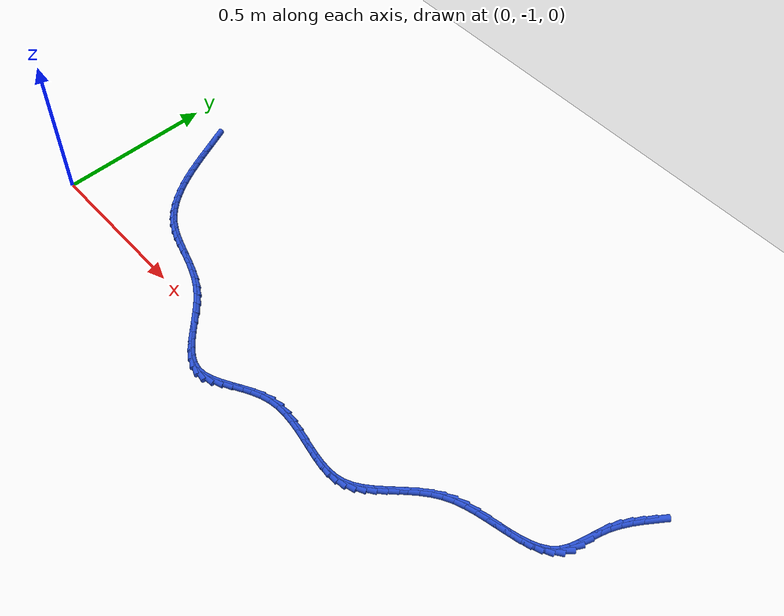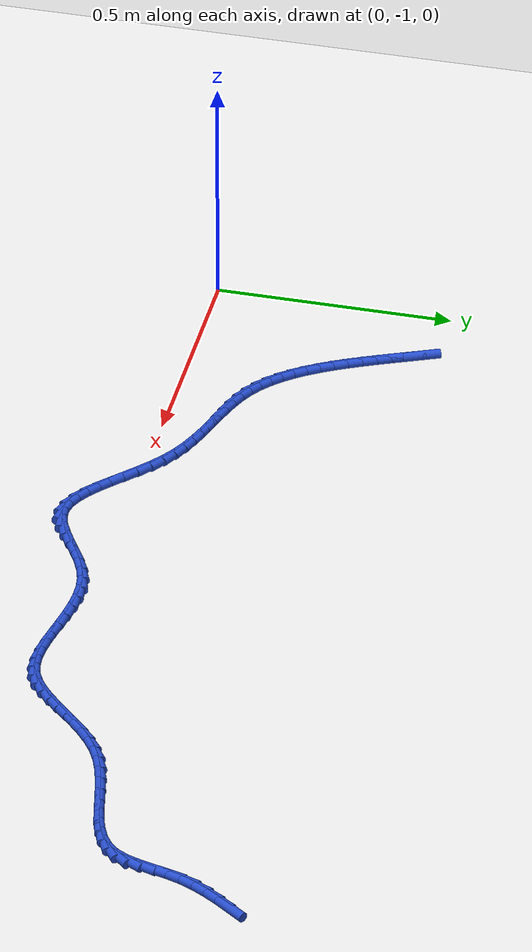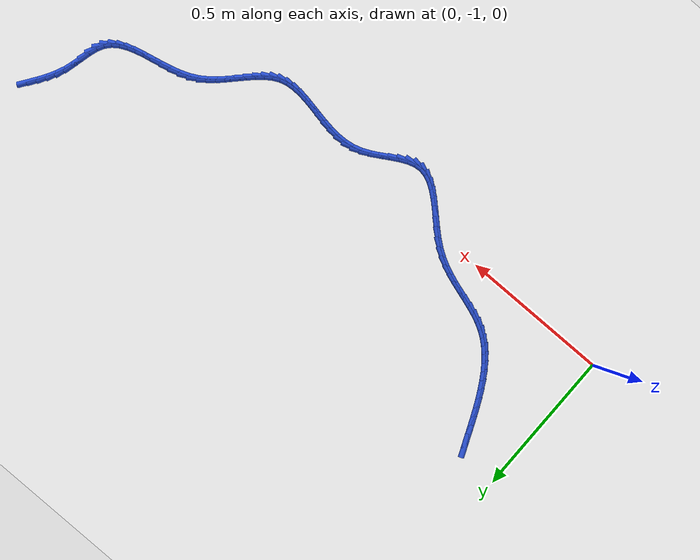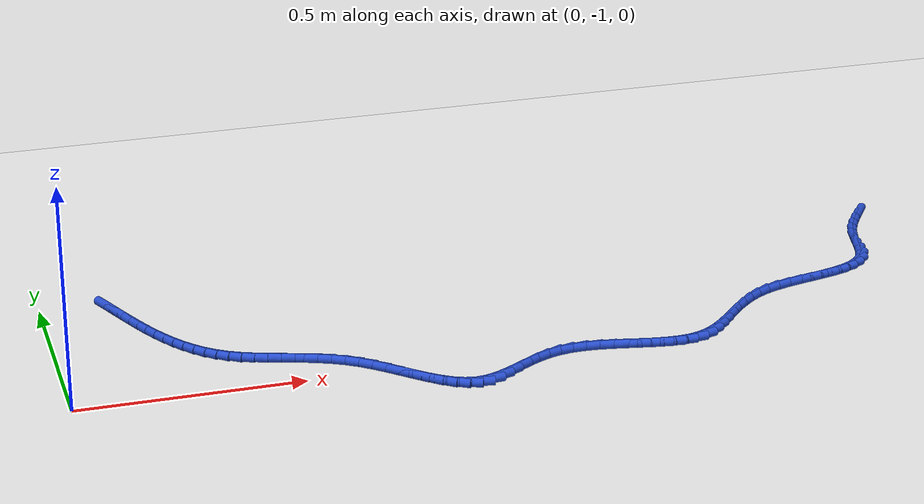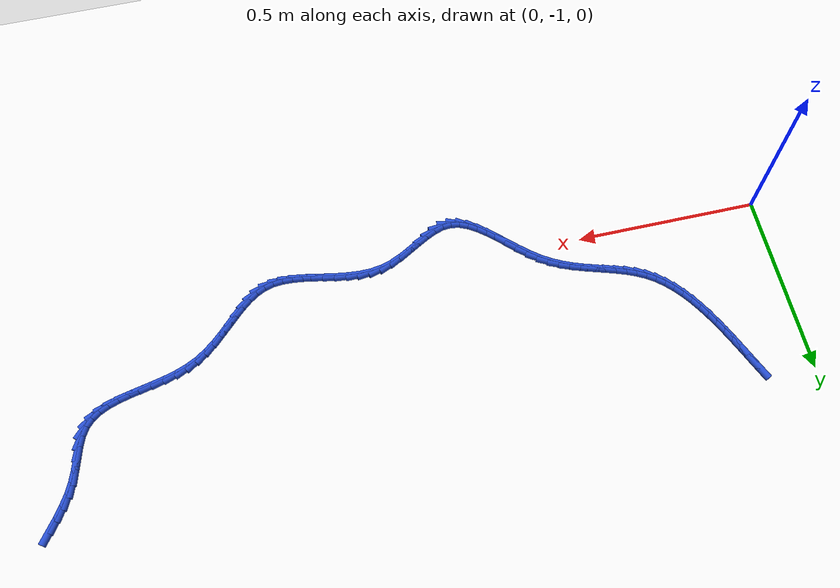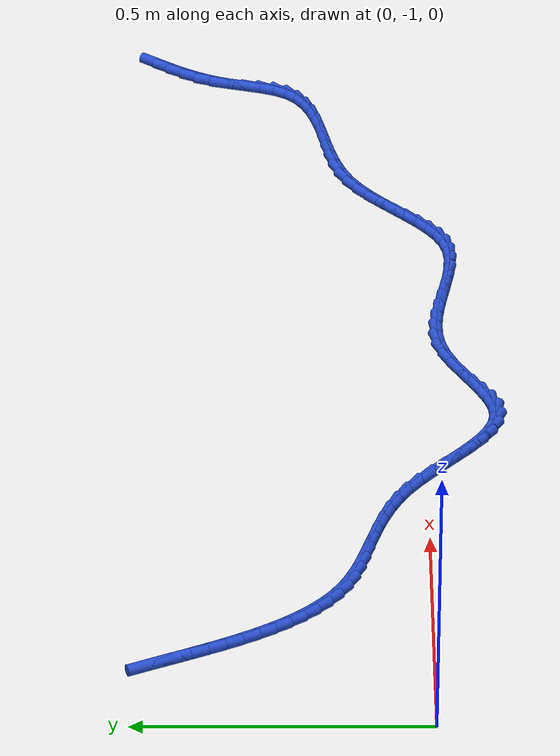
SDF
<sdf version="1.6">
 <world name="default">
  <model name="ground_plane">
   <static>1</static>
   <link name="link">
    <collision name="collision">
     <geometry><plane><normal>0 0 1</normal><size>100 100</size></plane></geometry>
     <surface><friction><ode><mu>100</mu><mu2>50</mu2></ode></friction></surface>
    </collision>
    <visual name="visual">
     <cast_shadows>0</cast_shadows>
     <geometry><plane><normal>0 0 1</normal><size>100 100</size></plane></geometry>
     <material>
      <script><uri>file://media/materials/scripts/gazebo.material</uri><name>Gazebo/WhiteGlow</name></script>
     </material>
    </visual>
   </link>
  </model>
  <model name="line">
   <link name="link_141">
    <pose>1.9803087918837716 -0.5093357643512426 0.01 0 1.57 0.9616174661129991</pose>
    <collision name="collision">
     <geometry><cylinder><radius>0.01</radius><length>0.08</length></cylinder></geometry>
    </collision>
    <visual name="visual">
     <material>
      <script><name>Gazebo/Blue</name><uri>file://media/materials/scripts/gazebo.material</uri></script>
     </material>
     <geometry><cylinder><radius>0.01</radius><length>0.08</length></cylinder></geometry>
    </visual>
   </link>
   <link name="link_142">
    <pose>1.9623600269760786 -0.5350614833952047 0.01 0 1.57 1.0075469430716104</pose>
    <collision name="collision">
     <geometry><cylinder><radius>0.01</radius><length>0.08</length></cylinder></geometry>
    </collision>
    <visual name="visual">
     <material>
      <script><name>Gazebo/Blue</name><uri>file://media/materials/scripts/gazebo.material</uri></script>
     </material>
     <geometry><cylinder><radius>0.01</radius><length>0.08</length></cylinder></geometry>
    </visual>
   </link>
   <link name="link_143">
    <pose>1.9456217870574417 -0.5615676227456619 0.01 0 1.57 1.0735924194856676</pose>
    <collision name="collision">
     <geometry><cylinder><radius>0.01</radius><length>0.08</length></cylinder></geometry>
    </collision>
    <visual name="visual">
     <material>
      <script><name>Gazebo/Blue</name><uri>file://media/materials/scripts/gazebo.material</uri></script>
     </material>
     <geometry><cylinder><radius>0.01</radius><length>0.08</length></cylinder></geometry>
    </visual>
   </link>
   <link name="link_144">
    <pose>1.9307254029369152 -0.5890174170248762 0.01 0 1.57 1.1604555459437205</pose>
    <collision name="collision">
     <geometry><cylinder><radius>0.01</radius><length>0.08</length></cylinder></geometry>
    </collision>
    <visual name="visual">
     <material>
      <script><name>Gazebo/Blue</name><uri>file://media/materials/scripts/gazebo.material</uri></script>
     </material>
     <geometry><cylinder><radius>0.01</radius><length>0.08</length></cylinder></geometry>
    </visual>
   </link>
   <link name="link_145">
    <pose>1.9183022054235566 -0.6175741008551107 0.01 0 1.57 1.2619222688862324</pose>
    <collision name="collision">
     <geometry><cylinder><radius>0.01</radius><length>0.08</length></cylinder></geometry>
    </collision>
    <visual name="visual">
     <material>
      <script><name>Gazebo/Blue</name><uri>file://media/materials/scripts/gazebo.material</uri></script>
     </material>
     <geometry><cylinder><radius>0.01</radius><length>0.08</length></cylinder></geometry>
    </visual>
   </link>
   <link name="link_146">
    <pose>1.9088176614021874 -0.6472981559028743 0.01 0 1.57 1.324828326039104</pose>
    <collision name="collision">
     <geometry><cylinder><radius>0.01</radius><length>0.08</length></cylinder></geometry>
    </collision>
    <visual name="visual">
     <material>
      <script><name>Gazebo/Blue</name><uri>file://media/materials/scripts/gazebo.material</uri></script>
     </material>
     <geometry><cylinder><radius>0.01</radius><length>0.08</length></cylinder></geometry>
    </visual>
   </link>
   <link name="link_147">
    <pose>1.901274617219261 -0.6773439681652539 0.01 0 1.57 1.3226670640236446</pose>
    <collision name="collision">
     <geometry><cylinder><radius>0.01</radius><length>0.08</length></cylinder></geometry>
    </collision>
    <visual name="visual">
     <material>
      <script><name>Gazebo/Blue</name><uri>file://media/materials/scripts/gazebo.material</uri></script>
     </material>
     <geometry><cylinder><radius>0.01</radius><length>0.08</length></cylinder></geometry>
    </visual>
   </link>
   <link name="link_148">
    <pose>1.8939146991314708 -0.7063943466248471 0.01 0 1.57 1.2480203772547067</pose>
    <collision name="collision">
     <geometry><cylinder><radius>0.01</radius><length>0.08</length></cylinder></geometry>
    </collision>
    <visual name="visual">
     <material>
      <script><name>Gazebo/Blue</name><uri>file://media/materials/scripts/gazebo.material</uri></script>
     </material>
     <geometry><cylinder><radius>0.01</radius><length>0.08</length></cylinder></geometry>
    </visual>
   </link>
   <link name="link_149">
    <pose>1.8849729957350259 -0.7331280501735445 0.01 0 1.57 1.0818809203704731</pose>
    <collision name="collision">
     <geometry><cylinder><radius>0.01</radius><length>0.08</length></cylinder></geometry>
    </collision>
    <visual name="visual">
     <material>
      <script><name>Gazebo/Blue</name><uri>file://media/materials/scripts/gazebo.material</uri></script>
     </material>
     <geometry><cylinder><radius>0.01</radius><length>0.08</length></cylinder></geometry>
    </visual>
   </link>
   <link name="link_150">
    <pose>1.872685650878479 -0.7562247459262164 0.01 0 1.57 0.837390259455404</pose>
    <collision name="collision">
     <geometry><cylinder><radius>0.01</radius><length>0.08</length></cylinder></geometry>
    </collision>
    <visual name="visual">
     <material>
      <script><name>Gazebo/Blue</name><uri>file://media/materials/scripts/gazebo.material</uri></script>
     </material>
     <geometry><cylinder><radius>0.01</radius><length>0.08</length></cylinder></geometry>
    </visual>
   </link>
   <link name="link_151">
    <pose>1.8558813153719185 -0.7748740533716243 0.01 0 1.57 0.6142586294428259</pose>
    <collision name="collision">
     <geometry><cylinder><radius>0.01</radius><length>0.08</length></cylinder></geometry>
    </collision>
    <visual name="visual">
     <material>
      <script><name>Gazebo/Blue</name><uri>file://media/materials/scripts/gazebo.material</uri></script>
     </material>
     <geometry><cylinder><radius>0.01</radius><length>0.08</length></cylinder></geometry>
    </visual>
   </link>
   <link name="link_152">
    <pose>1.8349672529270007 -0.7896242551854119 0.01 0 1.57 0.4452506866545466</pose>
    <collision name="collision">
     <geometry><cylinder><radius>0.01</radius><length>0.08</length></cylinder></geometry>
    </collision>
    <visual name="visual">
     <material>
      <script><name>Gazebo/Blue</name><uri>file://media/materials/scripts/gazebo.material</uri></script>
     </material>
     <geometry><cylinder><radius>0.01</radius><length>0.08</length></cylinder></geometry>
    </visual>
   </link>
   <link name="link_153">
    <pose>1.810610762202967 -0.8012474380614465 0.01 0 1.57 0.3291749541562293</pose>
    <collision name="collision">
     <geometry><cylinder><radius>0.01</radius><length>0.08</length></cylinder></geometry>
    </collision>
    <visual name="visual">
     <material>
      <script><name>Gazebo/Blue</name><uri>file://media/materials/scripts/gazebo.material</uri></script>
     </material>
     <geometry><cylinder><radius>0.01</radius><length>0.08</length></cylinder></geometry>
    </visual>
   </link>
   <link name="link_154">
    <pose>1.783479141859061 -0.8105156886935954 0.01 0 1.57 0.25702983141219127</pose>
    <collision name="collision">
     <geometry><cylinder><radius>0.01</radius><length>0.08</length></cylinder></geometry>
    </collision>
    <visual name="visual">
     <material>
      <script><name>Gazebo/Blue</name><uri>file://media/materials/scripts/gazebo.material</uri></script>
     </material>
     <geometry><cylinder><radius>0.01</radius><length>0.08</length></cylinder></geometry>
    </visual>
   </link>
   <link name="link_155">
    <pose>1.7542396905545246 -0.8182010937757264 0.01 0 1.57 0.2204347367454198</pose>
    <collision name="collision">
     <geometry><cylinder><radius>0.01</radius><length>0.08</length></cylinder></geometry>
    </collision>
    <visual name="visual">
     <material>
      <script><name>Gazebo/Blue</name><uri>file://media/materials/scripts/gazebo.material</uri></script>
     </material>
     <geometry><cylinder><radius>0.01</radius><length>0.08</length></cylinder></geometry>
    </visual>
   </link>
   <link name="link_156">
    <pose>1.7235597069486033 -0.8250757400017068 0.01 0 1.57 0.21400962419500233</pose>
    <collision name="collision">
     <geometry><cylinder><radius>0.01</radius><length>0.08</length></cylinder></geometry>
    </collision>
    <visual name="visual">
     <material>
      <script><name>Gazebo/Blue</name><uri>file://media/materials/scripts/gazebo.material</uri></script>
     </material>
     <geometry><cylinder><radius>0.01</radius><length>0.08</length></cylinder></geometry>
    </visual>
   </link>
   <link name="link_157">
    <pose>1.692106489700538 -0.8319117140654037 0.01 0 1.57 0.23540092606670313</pose>
    <collision name="collision">
     <geometry><cylinder><radius>0.01</radius><length>0.08</length></cylinder></geometry>
    </collision>
    <visual name="visual">
     <material>
      <script><name>Gazebo/Blue</name><uri>file://media/materials/scripts/gazebo.material</uri></script>
     </material>
     <geometry><cylinder><radius>0.01</radius><length>0.08</length></cylinder></geometry>
    </visual>
   </link>
   <link name="link_158">
    <pose>1.6605473374695718 -0.8394811026606845 0.01 0 1.57 0.2848007526488967</pose>
    <collision name="collision">
     <geometry><cylinder><radius>0.01</radius><length>0.08</length></cylinder></geometry>
    </collision>
    <visual name="visual">
     <material>
      <script><name>Gazebo/Blue</name><uri>file://media/materials/scripts/gazebo.material</uri></script>
     </material>
     <geometry><cylinder><radius>0.01</radius><length>0.08</length></cylinder></geometry>
    </visual>
   </link>
   <link name="link_159">
    <pose>1.6295495489149492 -0.8485559924814177 0.01 0 1.57 0.36432676754444265</pose>
    <collision name="collision">
     <geometry><cylinder><radius>0.01</radius><length>0.08</length></cylinder></geometry>
    </collision>
    <visual name="visual">
     <material>
      <script><name>Gazebo/Blue</name><uri>file://media/materials/scripts/gazebo.material</uri></script>
     </material>
     <geometry><cylinder><radius>0.01</radius><length>0.08</length></cylinder></geometry>
    </visual>
   </link>
   <link name="link_160">
    <pose>1.5997804226959111 -0.8599084702214695 0.01 0 1.57 0.47658942197182647</pose>
    <collision name="collision">
     <geometry><cylinder><radius>0.01</radius><length>0.08</length></cylinder></geometry>
    </collision>
    <visual name="visual">
     <material>
      <script><name>Gazebo/Blue</name><uri>file://media/materials/scripts/gazebo.material</uri></script>
     </material>
     <geometry><cylinder><radius>0.01</radius><length>0.08</length></cylinder></geometry>
    </visual>
   </link>
   <link name="link_161">
    <pose>1.5719015489816948 -0.8743018739629826 0.01 0 1.57 0.6000782211275286</pose>
    <collision name="collision">
     <geometry><cylinder><radius>0.01</radius><length>0.08</length></cylinder></geometry>
    </collision>
    <visual name="visual">
     <material>
      <script><name>Gazebo/Blue</name><uri>file://media/materials/scripts/gazebo.material</uri></script>
     </material>
     <geometry><cylinder><radius>0.01</radius><length>0.08</length></cylinder></geometry>
    </visual>
   </link>
   <link name="link_162">
    <pose>1.5461831429823234 -0.8918997356128829 0.01 0 1.57 0.6960551902035438</pose>
    <collision name="collision">
     <geometry><cylinder><radius>0.01</radius><length>0.08</length></cylinder></geometry>
    </collision>
    <visual name="visual">
     <material>
      <script><name>Gazebo/Blue</name><uri>file://media/materials/scripts/gazebo.material</uri></script>
     </material>
     <geometry><cylinder><radius>0.01</radius><length>0.08</length></cylinder></geometry>
    </visual>
   </link>
   <link name="link_163">
    <pose>1.5222588863596431 -0.9118900603001465 0.01 0 1.57 0.7610241458978654</pose>
    <collision name="collision">
     <geometry><cylinder><radius>0.01</radius><length>0.08</length></cylinder></geometry>
    </collision>
    <visual name="visual">
     <material>
      <script><name>Gazebo/Blue</name><uri>file://media/materials/scripts/gazebo.material</uri></script>
     </material>
     <geometry><cylinder><radius>0.01</radius><length>0.08</length></cylinder></geometry>
    </visual>
   </link>
   <link name="link_164">
    <pose>1.4997040547383311 -0.9333713423127067 0.01 0 1.57 0.7959424958872895</pose>
    <collision name="collision">
     <geometry><cylinder><radius>0.01</radius><length>0.08</length></cylinder></geometry>
    </collision>
    <visual name="visual">
     <material>
      <script><name>Gazebo/Blue</name><uri>file://media/materials/scripts/gazebo.material</uri></script>
     </material>
     <geometry><cylinder><radius>0.01</radius><length>0.08</length></cylinder></geometry>
    </visual>
   </link>
   <link name="link_165">
    <pose>1.4780939237430641 -0.9554420759384944 0.01 0 1.57 0.800998833929001</pose>
    <collision name="collision">
     <geometry><cylinder><radius>0.01</radius><length>0.08</length></cylinder></geometry>
    </collision>
    <visual name="visual">
     <material>
      <script><name>Gazebo/Blue</name><uri>file://media/materials/scripts/gazebo.material</uri></script>
     </material>
     <geometry><cylinder><radius>0.01</radius><length>0.08</length></cylinder></geometry>
    </visual>
   </link>
   <link name="link_166">
    <pose>1.4570037689985196 -0.977200755465442 0.01 0 1.57 0.7745708804798379</pose>
    <collision name="collision">
     <geometry><cylinder><radius>0.01</radius><length>0.08</length></cylinder></geometry>
    </collision>
    <visual name="visual">
     <material>
      <script><name>Gazebo/Blue</name><uri>file://media/materials/scripts/gazebo.material</uri></script>
     </material>
     <geometry><cylinder><radius>0.01</radius><length>0.08</length></cylinder></geometry>
    </visual>
   </link>
   <link name="link_167">
    <pose>1.4360088661293744 -0.9977458751814815 0.01 0 1.57 0.7127213934936995</pose>
    <collision name="collision">
     <geometry><cylinder><radius>0.01</radius><length>0.08</length></cylinder></geometry>
    </collision>
    <visual name="visual">
     <material>
      <script><name>Gazebo/Blue</name><uri>file://media/materials/scripts/gazebo.material</uri></script>
     </material>
     <geometry><cylinder><radius>0.01</radius><length>0.08</length></cylinder></geometry>
    </visual>
   </link>
   <link name="link_168">
    <pose>1.4146844907603071 -1.016175929374545 0.01 0 1.57 0.6094628033240533</pose>
    <collision name="collision">
     <geometry><cylinder><radius>0.01</radius><length>0.08</length></cylinder></geometry>
    </collision>
    <visual name="visual">
     <material>
      <script><name>Gazebo/Blue</name><uri>file://media/materials/scripts/gazebo.material</uri></script>
     </material>
     <geometry><cylinder><radius>0.01</radius><length>0.08</length></cylinder></geometry>
    </visual>
   </link>
   <link name="link_169">
    <pose>1.3926059185159936 -1.031589412332564 0.01 0 1.57 0.45905050871153846</pose>
    <collision name="collision">
     <geometry><cylinder><radius>0.01</radius><length>0.08</length></cylinder></geometry>
    </collision>
    <visual name="visual">
     <material>
      <script><name>Gazebo/Blue</name><uri>file://media/materials/scripts/gazebo.material</uri></script>
     </material>
     <geometry><cylinder><radius>0.01</radius><length>0.08</length></cylinder></geometry>
    </visual>
   </link>
   <link name="link_170">
    <pose>1.369348425021111 -1.0430848183434707 0.01 0 1.57 0.2680133254273836</pose>
    <collision name="collision">
     <geometry><cylinder><radius>0.01</radius><length>0.08</length></cylinder></geometry>
    </collision>
    <visual name="visual">
     <material>
      <script><name>Gazebo/Blue</name><uri>file://media/materials/scripts/gazebo.material</uri></script>
     </material>
     <geometry><cylinder><radius>0.01</radius><length>0.08</length></cylinder></geometry>
    </visual>
   </link>
   <link name="link_171">
    <pose>1.344536799510122 -1.0498985984631444 0.01 0 1.57 0.0942628286378651</pose>
    <collision name="collision">
     <geometry><cylinder><radius>0.01</radius><length>0.08</length></cylinder></geometry>
    </collision>
    <visual name="visual">
     <material>
      <script><name>Gazebo/Blue</name><uri>file://media/materials/scripts/gazebo.material</uri></script>
     </material>
     <geometry><cylinder><radius>0.01</radius><length>0.08</length></cylinder></geometry>
    </visual>
   </link>
   <link name="link_172">
    <pose>1.3181983491196567 -1.0523887149656335 0.01 0 1.57 -0.03363402758428632</pose>
    <collision name="collision">
     <geometry><cylinder><radius>0.01</radius><length>0.08</length></cylinder></geometry>
    </collision>
    <visual name="visual">
     <material>
      <script><name>Gazebo/Blue</name><uri>file://media/materials/scripts/gazebo.material</uri></script>
     </material>
     <geometry><cylinder><radius>0.01</radius><length>0.08</length></cylinder></geometry>
    </visual>
   </link>
   <link name="link_173">
    <pose>1.290556170447707 -1.0514586464265725 0.01 0 1.57 -0.11931075538445785</pose>
    <collision name="collision">
     <geometry><cylinder><radius>0.01</radius><length>0.08</length></cylinder></geometry>
    </collision>
    <visual name="visual">
     <material>
      <script><name>Gazebo/Blue</name><uri>file://media/materials/scripts/gazebo.material</uri></script>
     </material>
     <geometry><cylinder><radius>0.01</radius><length>0.08</length></cylinder></geometry>
    </visual>
   </link>
   <link name="link_174">
    <pose>1.2618346655362451 -1.0480155087009866 0.01 0 1.57 -0.16908338078601834</pose>
    <collision name="collision">
     <geometry><cylinder><radius>0.01</radius><length>0.08</length></cylinder></geometry>
    </collision>
    <visual name="visual">
     <material>
      <script><name>Gazebo/Blue</name><uri>file://media/materials/scripts/gazebo.material</uri></script>
     </material>
     <geometry><cylinder><radius>0.01</radius><length>0.08</length></cylinder></geometry>
    </visual>
   </link>
   <link name="link_175">
    <pose>1.2322582364272436 -1.0429664176438997 0.01 0 1.57 -0.18803696415677998</pose>
    <collision name="collision">
     <geometry><cylinder><radius>0.01</radius><length>0.08</length></cylinder></geometry>
    </collision>
    <visual name="visual">
     <material>
      <script><name>Gazebo/Blue</name><uri>file://media/materials/scripts/gazebo.material</uri></script>
     </material>
     <geometry><cylinder><radius>0.01</radius><length>0.08</length></cylinder></geometry>
    </visual>
   </link>
   <link name="link_176">
    <pose>1.2020512851626752 -1.037218489110336 0.01 0 1.57 -0.17901976851910803</pose>
    <collision name="collision">
     <geometry><cylinder><radius>0.01</radius><length>0.08</length></cylinder></geometry>
    </collision>
    <visual name="visual">
     <material>
      <script><name>Gazebo/Blue</name><uri>file://media/materials/scripts/gazebo.material</uri></script>
     </material>
     <geometry><cylinder><radius>0.01</radius><length>0.08</length></cylinder></geometry>
    </visual>
   </link>
   <link name="link_177">
    <pose>1.1714382137845107 -1.0316788389553195 0.01 0 1.57 -0.1426925622535508</pose>
    <collision name="collision">
     <geometry><cylinder><radius>0.01</radius><length>0.08</length></cylinder></geometry>
    </collision>
    <visual name="visual">
     <material>
      <script><name>Gazebo/Blue</name><uri>file://media/materials/scripts/gazebo.material</uri></script>
     </material>
     <geometry><cylinder><radius>0.01</radius><length>0.08</length></cylinder></geometry>
    </visual>
   </link>
   <link name="link_178">
    <pose>1.140643424334725 -1.0272545830338753 0.01 0 1.57 -0.077941992134923</pose>
    <collision name="collision">
     <geometry><cylinder><radius>0.01</radius><length>0.08</length></cylinder></geometry>
    </collision>
    <visual name="visual">
     <material>
      <script><name>Gazebo/Blue</name><uri>file://media/materials/scripts/gazebo.material</uri></script>
     </material>
     <geometry><cylinder><radius>0.01</radius><length>0.08</length></cylinder></geometry>
    </visual>
   </link>
   <link name="link_179">
    <pose>1.1098913188552897 -1.0248528372010273 0.01 0 1.57 0.017314319250920734</pose>
    <collision name="collision">
     <geometry><cylinder><radius>0.01</radius><length>0.08</length></cylinder></geometry>
    </collision>
    <visual name="visual">
     <material>
      <script><name>Gazebo/Blue</name><uri>file://media/materials/scripts/gazebo.material</uri></script>
     </material>
     <geometry><cylinder><radius>0.01</radius><length>0.08</length></cylinder></geometry>
    </visual>
   </link>
   <link name="link_180">
    <pose>1.0794062993881768 -1.0253807173118 0.01 0 1.57 0.14450447529705002</pose>
    <collision name="collision">
     <geometry><cylinder><radius>0.01</radius><length>0.08</length></cylinder></geometry>
    </collision>
    <visual name="visual">
     <material>
      <script><name>Gazebo/Blue</name><uri>file://media/materials/scripts/gazebo.material</uri></script>
     </material>
     <geometry><cylinder><radius>0.01</radius><length>0.08</length></cylinder></geometry>
    </visual>
   </link>
   <link name="link_181">
    <pose>1.049412767975359 -1.0297453392212172 0.01 0 1.57 0.29770691655304515</pose>
    <collision name="collision">
     <geometry><cylinder><radius>0.01</radius><length>0.08</length></cylinder></geometry>
    </collision>
    <visual name="visual">
     <material>
      <script><name>Gazebo/Blue</name><uri>file://media/materials/scripts/gazebo.material</uri></script>
     </material>
     <geometry><cylinder><radius>0.01</radius><length>0.08</length></cylinder></geometry>
    </visual>
   </link>
   <link name="link_182">
    <pose>1.0201234065485865 -1.038732062772616 0.01 0 1.57 0.42603855463510015</pose>
    <collision name="collision">
     <geometry><cylinder><radius>0.01</radius><length>0.08</length></cylinder></geometry>
    </collision>
    <visual name="visual">
     <material>
      <script><name>Gazebo/Blue</name><uri>file://media/materials/scripts/gazebo.material</uri></script>
     </material>
     <geometry><cylinder><radius>0.01</radius><length>0.08</length></cylinder></geometry>
    </visual>
   </link>
   <link name="link_183">
    <pose>0.9916109154937528 -1.0516720298532216 0.01 0 1.57 0.5029017534004454</pose>
    <collision name="collision">
     <geometry><cylinder><radius>0.01</radius><length>0.08</length></cylinder></geometry>
    </collision>
    <visual name="visual">
     <material>
      <script><name>Gazebo/Blue</name><uri>file://media/materials/scripts/gazebo.material</uri></script>
     </material>
     <geometry><cylinder><radius>0.01</radius><length>0.08</length></cylinder></geometry>
    </visual>
   </link>
   <link name="link_184">
    <pose>0.9638558786397932 -1.066939416556198 0.01 0 1.57 0.5333411153434713</pose>
    <collision name="collision">
     <geometry><cylinder><radius>0.01</radius><length>0.08</length></cylinder></geometry>
    </collision>
    <visual name="visual">
     <material>
      <script><name>Gazebo/Blue</name><uri>file://media/materials/scripts/gazebo.material</uri></script>
     </material>
     <geometry><cylinder><radius>0.01</radius><length>0.08</length></cylinder></geometry>
    </visual>
   </link>
   <link name="link_185">
    <pose>0.9368372613281878 -1.0828915850903966 0.01 0 1.57 0.5181107118379943</pose>
    <collision name="collision">
     <geometry><cylinder><radius>0.01</radius><length>0.08</length></cylinder></geometry>
    </collision>
    <visual name="visual">
     <material>
      <script><name>Gazebo/Blue</name><uri>file://media/materials/scripts/gazebo.material</uri></script>
     </material>
     <geometry><cylinder><radius>0.01</radius><length>0.08</length></cylinder></geometry>
    </visual>
   </link>
   <link name="link_186">
    <pose>0.9105340289004193 -1.0978858976646662 0.01 0 1.57 0.45073802725872214</pose>
    <collision name="collision">
     <geometry><cylinder><radius>0.01</radius><length>0.08</length></cylinder></geometry>
    </collision>
    <visual name="visual">
     <material>
      <script><name>Gazebo/Blue</name><uri>file://media/materials/scripts/gazebo.material</uri></script>
     </material>
     <geometry><cylinder><radius>0.01</radius><length>0.08</length></cylinder></geometry>
    </visual>
   </link>
   <link name="link_187">
    <pose>0.8849251466979678 -1.1102797164878584 0.01 0 1.57 0.31592226912365007</pose>
    <collision name="collision">
     <geometry><cylinder><radius>0.01</radius><length>0.08</length></cylinder></geometry>
    </collision>
    <visual name="visual">
     <material>
      <script><name>Gazebo/Blue</name><uri>file://media/materials/scripts/gazebo.material</uri></script>
     </material>
     <geometry><cylinder><radius>0.01</radius><length>0.08</length></cylinder></geometry>
    </visual>
   </link>
   <link name="link_188">
    <pose>0.8599895800623146 -1.1184304037688242 0.01 0 1.57 0.09328224552289062</pose>
    <collision name="collision">
     <geometry><cylinder><radius>0.01</radius><length>0.08</length></cylinder></geometry>
    </collision>
    <visual name="visual">
     <material>
      <script><name>Gazebo/Blue</name><uri>file://media/materials/scripts/gazebo.material</uri></script>
     </material>
     <geometry><cylinder><radius>0.01</radius><length>0.08</length></cylinder></geometry>
    </visual>
   </link>
   <link name="link_189">
    <pose>0.8357058922182701 -1.1207022340284967 0.01 0 1.57 -0.18301170579196788</pose>
    <collision name="collision">
     <geometry><cylinder><radius>0.01</radius><length>0.08</length></cylinder></geometry>
    </collision>
    <visual name="visual">
     <material>
      <script><name>Gazebo/Blue</name><uri>file://media/materials/scripts/gazebo.material</uri></script>
     </material>
     <geometry><cylinder><radius>0.01</radius><length>0.08</length></cylinder></geometry>
    </visual>
   </link>
   <link name="link_190">
    <pose>0.8120028650283561 -1.1163152143100261 0.01 0 1.57 -0.411099257064355</pose>
    <collision name="collision">
     <geometry><cylinder><radius>0.01</radius><length>0.08</length></cylinder></geometry>
    </collision>
    <visual name="visual">
     <material>
      <script><name>Gazebo/Blue</name><uri>file://media/materials/scripts/gazebo.material</uri></script>
     </material>
     <geometry><cylinder><radius>0.01</radius><length>0.08</length></cylinder></geometry>
    </visual>
   </link>
   <link name="link_191">
    <pose>0.7887119863415742 -1.1061618179723955 0.01 0 1.57 -0.5716548274579738</pose>
    <collision name="collision">
     <geometry><cylinder><radius>0.01</radius><length>0.08</length></cylinder></geometry>
    </collision>
    <visual name="visual">
     <material>
      <script><name>Gazebo/Blue</name><uri>file://media/materials/scripts/gazebo.material</uri></script>
     </material>
     <geometry><cylinder><radius>0.01</radius><length>0.08</length></cylinder></geometry>
    </visual>
   </link>
   <link name="link_192">
    <pose>0.7656534797698585 -1.091328148551681 0.01 0 1.57 -0.6753531647949892</pose>
    <collision name="collision">
     <geometry><cylinder><radius>0.01</radius><length>0.08</length></cylinder></geometry>
    </collision>
    <visual name="visual">
     <material>
      <script><name>Gazebo/Blue</name><uri>file://media/materials/scripts/gazebo.material</uri></script>
     </material>
     <geometry><cylinder><radius>0.01</radius><length>0.08</length></cylinder></geometry>
    </visual>
   </link>
   <link name="link_193">
    <pose>0.7426475689251445 -1.0729003095839598 0.01 0 1.57 -0.7355815390486673</pose>
    <collision name="collision">
     <geometry><cylinder><radius>0.01</radius><length>0.08</length></cylinder></geometry>
    </collision>
    <visual name="visual">
     <material>
      <script><name>Gazebo/Blue</name><uri>file://media/materials/scripts/gazebo.material</uri></script>
     </material>
     <geometry><cylinder><radius>0.01</radius><length>0.08</length></cylinder></geometry>
    </visual>
   </link>
   <link name="link_194">
    <pose>0.7195144774193662 -1.051964404605308 0.01 0 1.57 -0.761773076268712</pose>
    <collision name="collision">
     <geometry><cylinder><radius>0.01</radius><length>0.08</length></cylinder></geometry>
    </collision>
    <visual name="visual">
     <material>
      <script><name>Gazebo/Blue</name><uri>file://media/materials/scripts/gazebo.material</uri></script>
     </material>
     <geometry><cylinder><radius>0.01</radius><length>0.08</length></cylinder></geometry>
    </visual>
   </link>
   <link name="link_195">
    <pose>0.6960744288644585 -1.0296065371518028 0.01 0 1.57 -0.7589555474741261</pose>
    <collision name="collision">
     <geometry><cylinder><radius>0.01</radius><length>0.08</length></cylinder></geometry>
    </collision>
    <visual name="visual">
     <material>
      <script><name>Gazebo/Blue</name><uri>file://media/materials/scripts/gazebo.material</uri></script>
     </material>
     <geometry><cylinder><radius>0.01</radius><length>0.08</length></cylinder></geometry>
    </visual>
   </link>
   <link name="link_196">
    <pose>0.6721476468723557 -1.0069128107595204 0.01 0 1.57 -0.728519448872654</pose>
    <collision name="collision">
     <geometry><cylinder><radius>0.01</radius><length>0.08</length></cylinder></geometry>
    </collision>
    <visual name="visual">
     <material>
      <script><name>Gazebo/Blue</name><uri>file://media/materials/scripts/gazebo.material</uri></script>
     </material>
     <geometry><cylinder><radius>0.01</radius><length>0.08</length></cylinder></geometry>
    </visual>
   </link>
   <link name="link_197">
    <pose>0.6475543550549926 -0.9849693289645374 0.01 0 1.57 -0.6688523387672435</pose>
    <collision name="collision">
     <geometry><cylinder><radius>0.01</radius><length>0.08</length></cylinder></geometry>
    </collision>
    <visual name="visual">
     <material>
      <script><name>Gazebo/Blue</name><uri>file://media/materials/scripts/gazebo.material</uri></script>
     </material>
     <geometry><cylinder><radius>0.01</radius><length>0.08</length></cylinder></geometry>
    </visual>
   </link>
   <link name="link_198">
    <pose>0.6221147770243035 -0.9648621953029302 0.01 0 1.57 -0.5781386690121575</pose>
    <collision name="collision">
     <geometry><cylinder><radius>0.01</radius><length>0.08</length></cylinder></geometry>
    </collision>
    <visual name="visual">
     <material>
      <script><name>Gazebo/Blue</name><uri>file://media/materials/scripts/gazebo.material</uri></script>
     </material>
     <geometry><cylinder><radius>0.01</radius><length>0.08</length></cylinder></geometry>
    </visual>
   </link>
   <link name="link_199">
    <pose>0.5956691136410265 -0.9476060988181564 0.01 0 1.57 -0.4828092701590742</pose>
    <collision name="collision">
     <geometry><cylinder><radius>0.01</radius><length>0.08</length></cylinder></geometry>
    </collision>
    <visual name="visual">
     <material>
      <script><name>Gazebo/Blue</name><uri>file://media/materials/scripts/gazebo.material</uri></script>
     </material>
     <geometry><cylinder><radius>0.01</radius><length>0.08</length></cylinder></geometry>
    </visual>
   </link>
   <link name="link_200">
    <pose>0.5683218359665394 -0.9332710177739608 0.01 0 1.57 -0.4058293384883436</pose>
    <collision name="collision">
     <geometry><cylinder><radius>0.01</radius><length>0.08</length></cylinder></geometry>
    </collision>
    <visual name="visual">
     <material>
      <script><name>Gazebo/Blue</name><uri>file://media/materials/scripts/gazebo.material</uri></script>
     </material>
     <geometry><cylinder><radius>0.01</radius><length>0.08</length></cylinder></geometry>
    </visual>
   </link>
   <link name="link_201">
    <pose>0.5403644692302548 -0.9212582508459205 0.01 0 1.57 -0.34947585747080984</pose>
    <collision name="collision">
     <geometry><cylinder><radius>0.01</radius><length>0.08</length></cylinder></geometry>
    </collision>
    <visual name="visual">
     <material>
      <script><name>Gazebo/Blue</name><uri>file://media/materials/scripts/gazebo.material</uri></script>
     </material>
     <geometry><cylinder><radius>0.01</radius><length>0.08</length></cylinder></geometry>
    </visual>
   </link>
   <link name="link_202">
    <pose>0.5120924922423902 -0.9109549634838546 0.01 0 1.57 -0.31461651703703536</pose>
    <collision name="collision">
     <geometry><cylinder><radius>0.01</radius><length>0.08</length></cylinder></geometry>
    </collision>
    <visual name="visual">
     <material>
      <script><name>Gazebo/Blue</name><uri>file://media/materials/scripts/gazebo.material</uri></script>
     </material>
     <geometry><cylinder><radius>0.01</radius><length>0.08</length></cylinder></geometry>
    </visual>
   </link>
   <link name="link_203">
    <pose>0.48380138381316334 -0.9017483211375816 0.01 0 1.57 -0.3018510274024102</pose>
    <collision name="collision">
     <geometry><cylinder><radius>0.01</radius><length>0.08</length></cylinder></geometry>
    </collision>
    <visual name="visual">
     <material>
      <script><name>Gazebo/Blue</name><uri>file://media/materials/scripts/gazebo.material</uri></script>
     </material>
     <geometry><cylinder><radius>0.01</radius><length>0.08</length></cylinder></geometry>
    </visual>
   </link>
   <link name="link_204">
    <pose>0.4557866227527924 -0.8930254892569202 0.01 0 1.57 -0.3120188967539483</pose>
    <collision name="collision">
     <geometry><cylinder><radius>0.01</radius><length>0.08</length></cylinder></geometry>
    </collision>
    <visual name="visual">
     <material>
      <script><name>Gazebo/Blue</name><uri>file://media/materials/scripts/gazebo.material</uri></script>
     </material>
     <geometry><cylinder><radius>0.01</radius><length>0.08</length></cylinder></geometry>
    </visual>
   </link>
   <link name="link_205">
    <pose>0.4283436878714954 -0.8841736332916891 0.01 0 1.57 -0.34643764485766204</pose>
    <collision name="collision">
     <geometry><cylinder><radius>0.01</radius><length>0.08</length></cylinder></geometry>
    </collision>
    <visual name="visual">
     <material>
      <script><name>Gazebo/Blue</name><uri>file://media/materials/scripts/gazebo.material</uri></script>
     </material>
     <geometry><cylinder><radius>0.01</radius><length>0.08</length></cylinder></geometry>
    </visual>
   </link>
   <link name="link_206">
    <pose>0.40176805797949044 -0.8745799186917071 0.01 0 1.57 -0.40679140171701117</pose>
    <collision name="collision">
     <geometry><cylinder><radius>0.01</radius><length>0.08</length></cylinder></geometry>
    </collision>
    <visual name="visual">
     <material>
      <script><name>Gazebo/Blue</name><uri>file://media/materials/scripts/gazebo.material</uri></script>
     </material>
     <geometry><cylinder><radius>0.01</radius><length>0.08</length></cylinder></geometry>
    </visual>
   </link>
   <link name="link_207">
    <pose>0.37635521188699533 -0.8636315109067929 0.01 0 1.57 -0.49450140775604906</pose>
    <collision name="collision">
     <geometry><cylinder><radius>0.01</radius><length>0.08</length></cylinder></geometry>
    </collision>
    <visual name="visual">
     <material>
      <script><name>Gazebo/Blue</name><uri>file://media/materials/scripts/gazebo.material</uri></script>
     </material>
     <geometry><cylinder><radius>0.01</radius><length>0.08</length></cylinder></geometry>
    </visual>
   </link>
   <link name="link_208">
    <pose>0.3524006270918353 -0.850715577904513 0.01 0 1.57 -0.6031734528766335</pose>
    <collision name="collision">
     <geometry><cylinder><radius>0.01</radius><length>0.08</length></cylinder></geometry>
    </collision>
    <visual name="visual">
     <material>
      <script><name>Gazebo/Blue</name><uri>file://media/materials/scripts/gazebo.material</uri></script>
     </material>
     <geometry><cylinder><radius>0.01</radius><length>0.08</length></cylinder></geometry>
    </visual>
   </link>
   <link name="link_209">
    <pose>0.33012145310014235 -0.8353695552791395 0.01 0 1.57 -0.7075279267049432</pose>
    <collision name="collision">
     <geometry><cylinder><radius>0.01</radius><length>0.08</length></cylinder></geometry>
    </collision>
    <visual name="visual">
     <material>
      <script><name>Gazebo/Blue</name><uri>file://media/materials/scripts/gazebo.material</uri></script>
     </material>
     <geometry><cylinder><radius>0.01</radius><length>0.08</length></cylinder></geometry>
    </visual>
   </link>
   <link name="link_210">
    <pose>0.30944524500797704 -0.8176864483997706 0.01 0 1.57 -0.8004239297257473</pose>
    <collision name="collision">
     <geometry><cylinder><radius>0.01</radius><length>0.08</length></cylinder></geometry>
    </collision>
    <visual name="visual">
     <material>
      <script><name>Gazebo/Blue</name><uri>file://media/materials/scripts/gazebo.material</uri></script>
     </material>
     <geometry><cylinder><radius>0.01</radius><length>0.08</length></cylinder></geometry>
    </visual>
   </link>
   <link name="link_211">
    <pose>0.290232646126426 -0.7978876289437594 0.01 0 1.57 -0.8812297714677071</pose>
    <collision name="collision">
     <geometry><cylinder><radius>0.01</radius><length>0.08</length></cylinder></geometry>
    </collision>
    <visual name="visual">
     <material>
      <script><name>Gazebo/Blue</name><uri>file://media/materials/scripts/gazebo.material</uri></script>
     </material>
     <geometry><cylinder><radius>0.01</radius><length>0.08</length></cylinder></geometry>
    </visual>
   </link>
   <link name="link_212">
    <pose>0.2723442997665761 -0.7761944685884596 0.01 0 1.57 -0.9501683976423911</pose>
    <collision name="collision">
     <geometry><cylinder><radius>0.01</radius><length>0.08</length></cylinder></geometry>
    </collision>
    <visual name="visual">
     <material>
      <script><name>Gazebo/Blue</name><uri>file://media/materials/scripts/gazebo.material</uri></script>
     </material>
     <geometry><cylinder><radius>0.01</radius><length>0.08</length></cylinder></geometry>
    </visual>
   </link>
   <link name="link_213">
    <pose>0.2556408492395135 -0.7528283390112236 0.01 0 1.57 -1.0079538204064185</pose>
    <collision name="collision">
     <geometry><cylinder><radius>0.01</radius><length>0.08</length></cylinder></geometry>
    </collision>
    <visual name="visual">
     <material>
      <script><name>Gazebo/Blue</name><uri>file://media/materials/scripts/gazebo.material</uri></script>
     </material>
     <geometry><cylinder><radius>0.01</radius><length>0.08</length></cylinder></geometry>
    </visual>
   </link>
   <link name="link_214">
    <pose>0.23998293785632496 -0.7280106118894046 0.01 0 1.57 -1.055502433048345</pose>
    <collision name="collision">
     <geometry><cylinder><radius>0.01</radius><length>0.08</length></cylinder></geometry>
    </collision>
    <visual name="visual">
     <material>
      <script><name>Gazebo/Blue</name><uri>file://media/materials/scripts/gazebo.material</uri></script>
     </material>
     <geometry><cylinder><radius>0.01</radius><length>0.08</length></cylinder></geometry>
    </visual>
   </link>
   <link name="link_215">
    <pose>0.2252312089280965 -0.7019626589003547 0.01 0 1.57 -1.0937424869222065</pose>
    <collision name="collision">
     <geometry><cylinder><radius>0.01</radius><length>0.08</length></cylinder></geometry>
    </collision>
    <visual name="visual">
     <material>
      <script><name>Gazebo/Blue</name><uri>file://media/materials/scripts/gazebo.material</uri></script>
     </material>
     <geometry><cylinder><radius>0.01</radius><length>0.08</length></cylinder></geometry>
    </visual>
   </link>
   <link name="link_216">
    <pose>0.21124630576591558 -0.6749058517214286 0.01 0 1.57 -1.1235047787493937</pose>
    <collision name="collision">
     <geometry><cylinder><radius>0.01</radius><length>0.08</length></cylinder></geometry>
    </collision>
    <visual name="visual">
     <material>
      <script><name>Gazebo/Blue</name><uri>file://media/materials/scripts/gazebo.material</uri></script>
     </material>
     <geometry><cylinder><radius>0.01</radius><length>0.08</length></cylinder></geometry>
    </visual>
   </link>
   <link name="link_217">
    <pose>0.19788887168086822 -0.6470615620299786 0.01 0 1.57 -1.1454676246658801</pose>
    <collision name="collision">
     <geometry><cylinder><radius>0.01</radius><length>0.08</length></cylinder></geometry>
    </collision>
    <visual name="visual">
     <material>
      <script><name>Gazebo/Blue</name><uri>file://media/materials/scripts/gazebo.material</uri></script>
     </material>
     <geometry><cylinder><radius>0.01</radius><length>0.08</length></cylinder></geometry>
    </visual>
   </link>
   <link name="link_218">
    <pose>0.18501954998404102 -0.6186511615033575 0.01 0 1.57 -1.160132964052789</pose>
    <collision name="collision">
     <geometry><cylinder><radius>0.01</radius><length>0.08</length></cylinder></geometry>
    </collision>
    <visual name="visual">
     <material>
      <script><name>Gazebo/Blue</name><uri>file://media/materials/scripts/gazebo.material</uri></script>
     </material>
     <geometry><cylinder><radius>0.01</radius><length>0.08</length></cylinder></geometry>
    </visual>
   </link>
   <link name="link_219">
    <pose>0.17249898398652053 -0.5898960218189185 0.01 0 1.57 -1.1678174825808465</pose>
    <collision name="collision">
     <geometry><cylinder><radius>0.01</radius><length>0.08</length></cylinder></geometry>
    </collision>
    <visual name="visual">
     <material>
      <script><name>Gazebo/Blue</name><uri>file://media/materials/scripts/gazebo.material</uri></script>
     </material>
     <geometry><cylinder><radius>0.01</radius><length>0.08</length></cylinder></geometry>
    </visual>
   </link>
   <link name="link_220">
    <pose>0.16018781699939333 -0.5610175146540147 0.01 0 1.57 -1.1686487494402042</pose>
    <collision name="collision">
     <geometry><cylinder><radius>0.01</radius><length>0.08</length></cylinder></geometry>
    </collision>
    <visual name="visual">
     <material>
      <script><name>Gazebo/Blue</name><uri>file://media/materials/scripts/gazebo.material</uri></script>
     </material>
     <geometry><cylinder><radius>0.01</radius><length>0.08</length></cylinder></geometry>
    </visual>
   </link>
   <link name="link_221">
    <pose>0.1479466923337459 -0.5322370116859991 0.01 0 1.57 -1.1625606564505733</pose>
    <collision name="collision">
     <geometry><cylinder><radius>0.01</radius><length>0.08</length></cylinder></geometry>
    </collision>
    <visual name="visual">
     <material>
      <script><name>Gazebo/Blue</name><uri>file://media/materials/scripts/gazebo.material</uri></script>
     </material>
     <geometry><cylinder><radius>0.01</radius><length>0.08</length></cylinder></geometry>
    </visual>
   </link>
  </model>
 </world>
</sdf>
